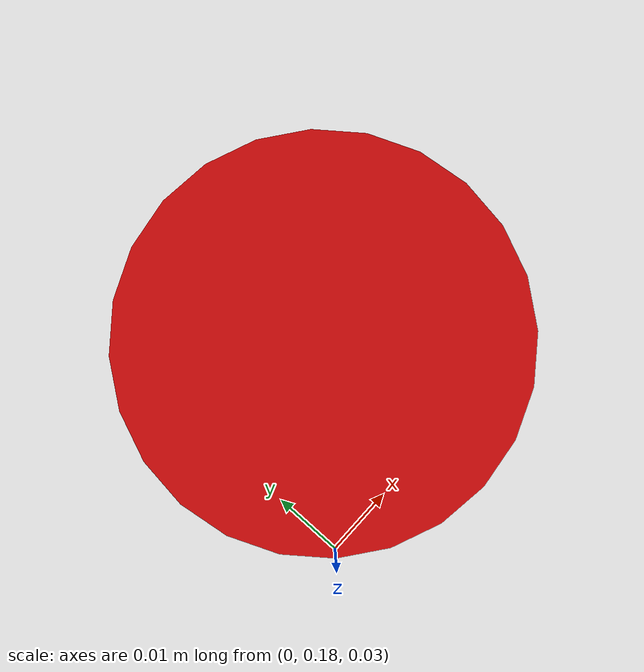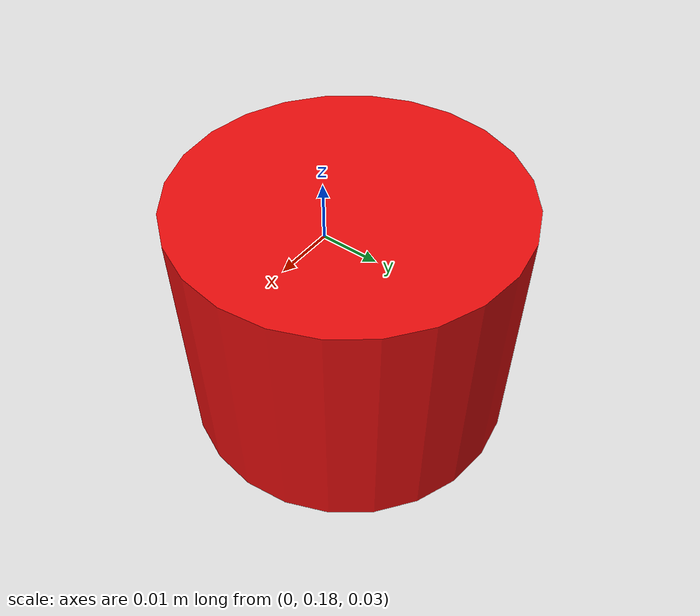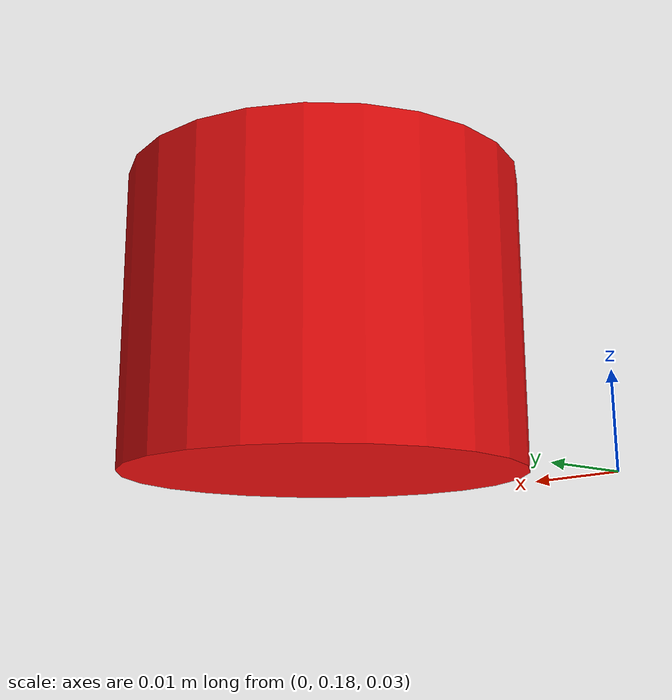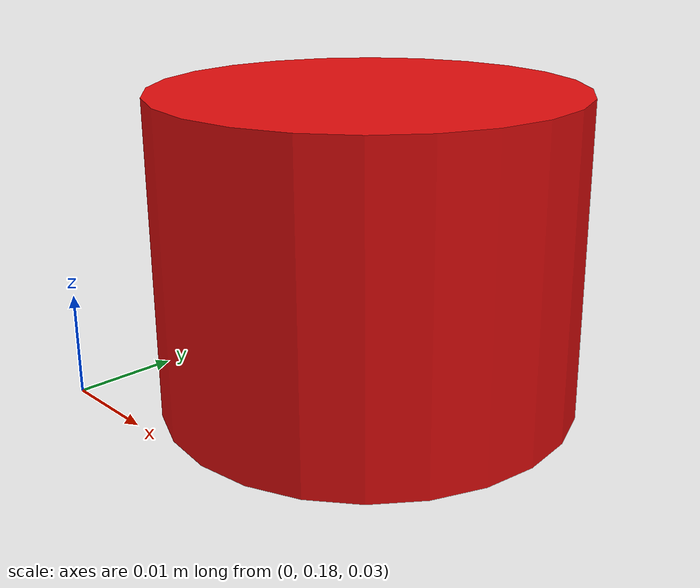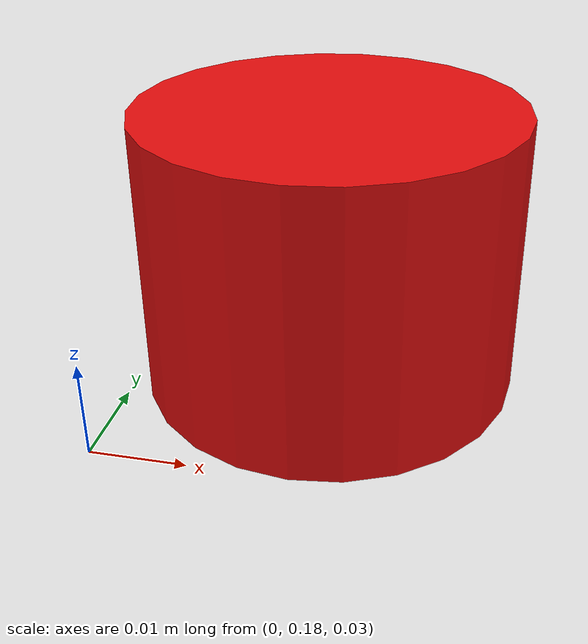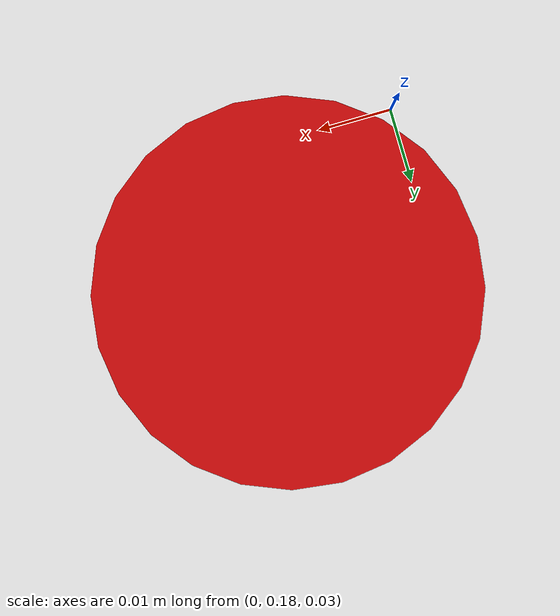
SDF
<?xml version="1.0" ?>
<sdf version="1.8">
  <model name="human_piece_0">
  <pose>0.02 0.20 0.045 0 0 0</pose>

  <link name="link">
    <inertial>
      <mass>0.02</mass>

      <inertia>
        <ixx>0.000002</ixx>
        <iyy>0.000002</iyy>
        <izz>0.000004</izz>
      </inertia>
    </inertial>

    <collision name="collision">
      <geometry>
        <cylinder>
          <radius>0.02</radius>
          <length>0.03</length>
        </cylinder>
      </geometry>
    </collision>

    <visual name="visual">
      <geometry>
        <cylinder>
          <radius>0.02</radius>
          <length>0.03</length>
        </cylinder>
      </geometry>

      <material>
        <ambient>0.9 0.05 0.05 1</ambient>
        <diffuse>0.9 0.05 0.05 1</diffuse>
      </material>
    </visual>
  </link>
  </model>
</sdf>
